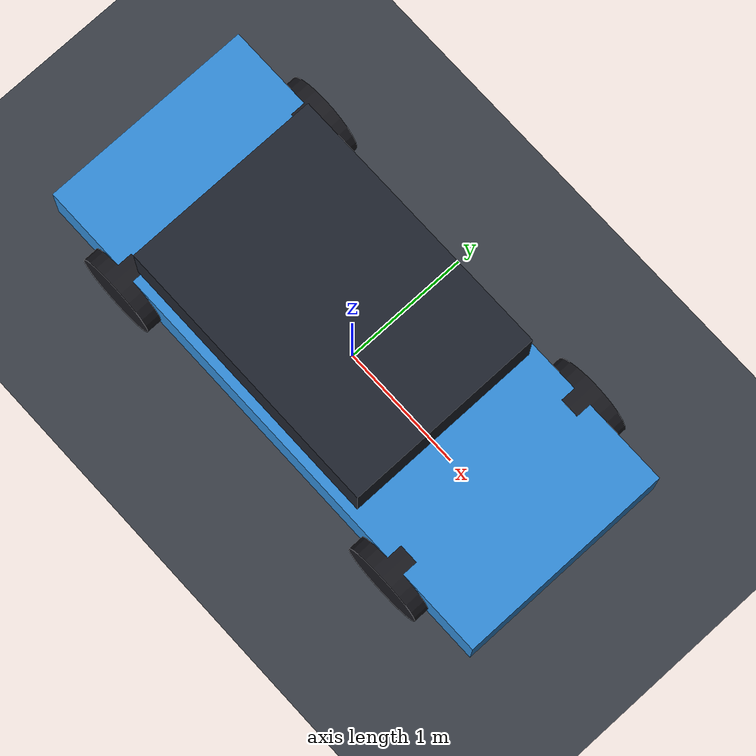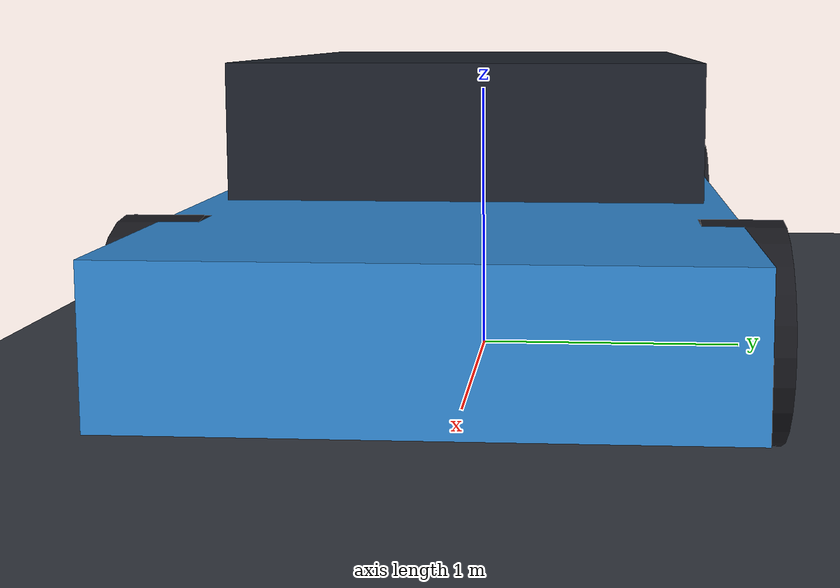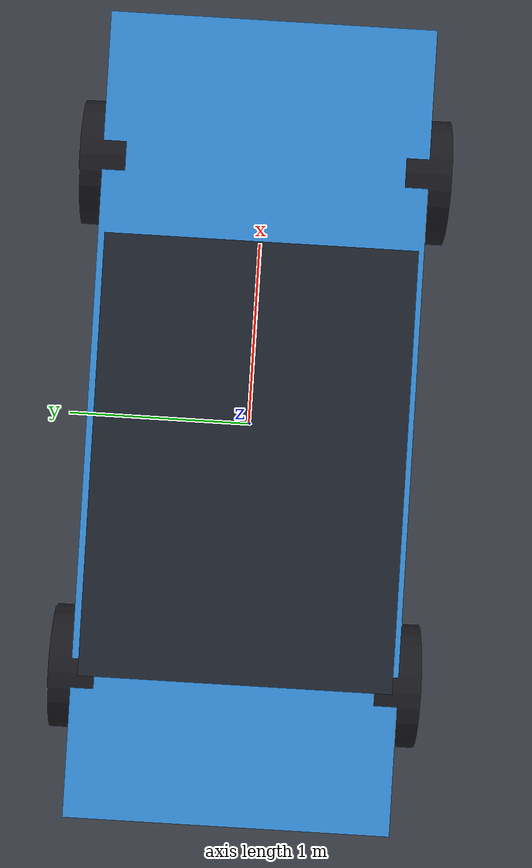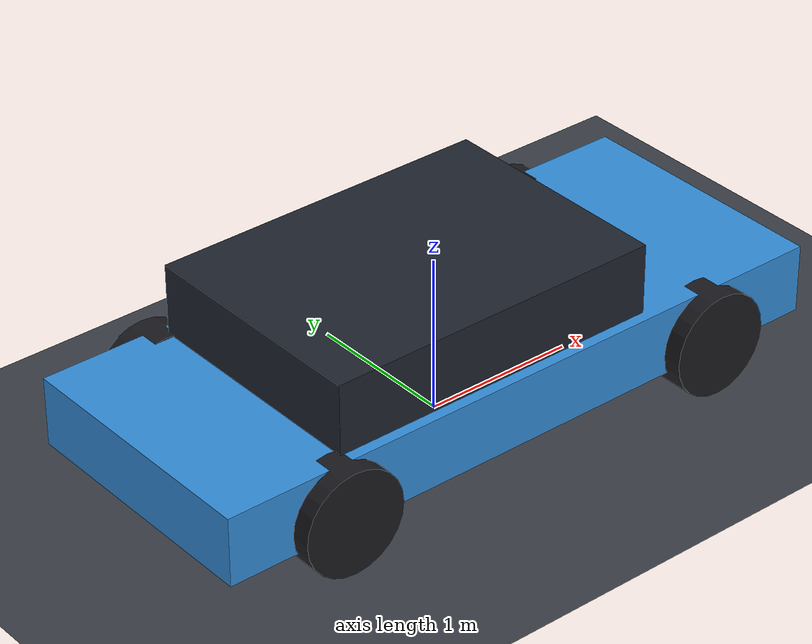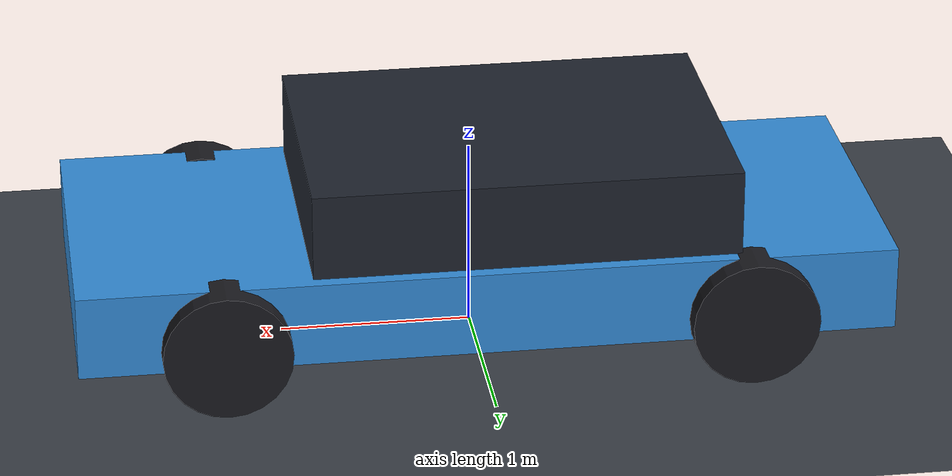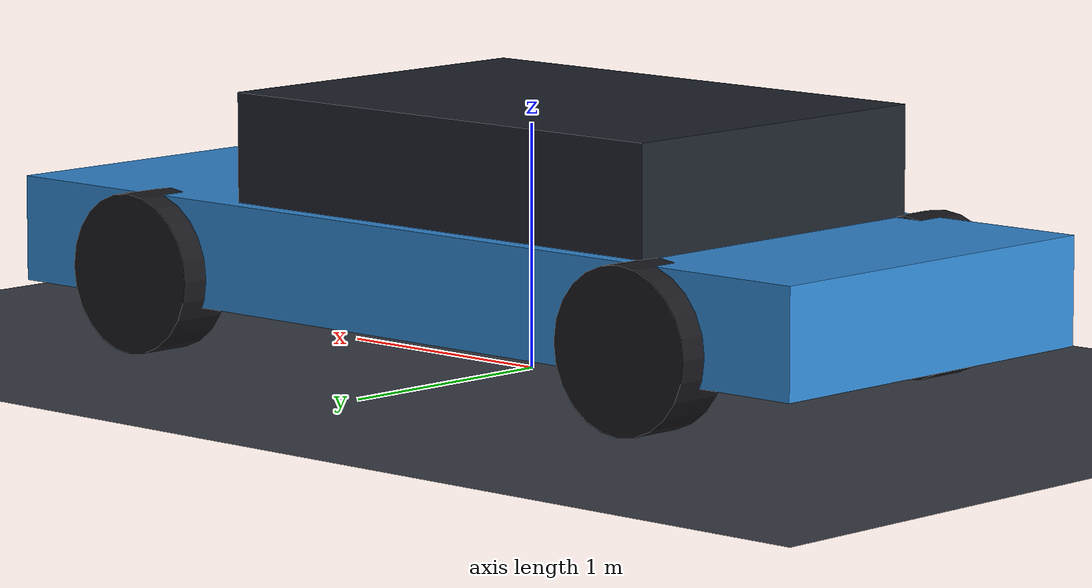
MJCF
<mujoco model="car-v1">
  <compiler angle="radian" autolimits="true"/>
  <option gravity="0 0 -9.81" timestep="0.004" integrator="implicitfast"/>

  <default>
    <joint damping="0.2"/>
    <geom condim="4" friction="1.3 0.02 0.001"/>
    <!-- wheels: a bit grippier, low rolling resistance -->
    <default class="wheel">
      <geom type="cylinder" size="0.33 0.12" euler="1.5708 0 0" rgba="0.1 0.1 0.12 1"
            friction="1.6 0.02 0.001" mass="15"/>
    </default>
  </default>

  <asset>
    <texture name="grid" type="2d" builtin="checker" rgb1="0.25 0.27 0.30" rgb2="0.20 0.22 0.25"
             width="128" height="128"/>
    <material name="asphalt" texture="grid" texrepeat="40 40" reflectance="0.02"/>
    <material name="car_body" rgba="0.20 0.55 0.85 1" specular="0.5" shininess="0.4"/>
    <material name="cabin" rgba="0.12 0.14 0.18 1" specular="0.6" shininess="0.6"/>
  </asset>

  <worldbody>
    <light name="sun" pos="10 -10 20" dir="-0.4 0.4 -1" diffuse="0.8 0.8 0.8" specular="0.2 0.2 0.2"/>
    <geom name="floor" type="plane" size="120 120 0.1" material="asphalt"/>

    <!-- a fixed drone camera; the chase camera lives on the chassis so it follows -->
    <camera name="overhead" pos="0 0 40" xyaxes="1 0 0 0 1 0"/>

    <body name="chassis" pos="0 0 0.45">
      <freejoint name="chassis_joint"/>
      <geom name="chassis_geom" type="box" size="2.1 0.85 0.22" mass="1100" material="car_body"/>
      <geom name="cabin_geom" type="box" size="1.1 0.78 0.25" pos="-0.2 0 0.42" mass="120" material="cabin"/>
      <!-- chase cam tracks the chassis center of mass -->
      <camera name="chase" pos="-9 0 3.5" xyaxes="0 -1 0 0.35 0 1" mode="trackcom"/>

      <!-- ===== front-left: steer hinge -> roll hinge -> wheel ===== -->
      <body name="steer_fl" pos="1.35 0.85 -0.1">
        <inertial pos="0 0 0" mass="2" diaginertia="0.05 0.05 0.05"/>
        <joint name="steer_l" type="hinge" axis="0 0 1" range="-0.7 0.7"/>
        <body name="wheel_fl">
          <joint name="roll_fl" type="hinge" axis="0 1 0"/>
          <geom class="wheel"/>
        </body>
      </body>
      <!-- ===== front-right ===== -->
      <body name="steer_fr" pos="1.35 -0.85 -0.1">
        <inertial pos="0 0 0" mass="2" diaginertia="0.05 0.05 0.05"/>
        <joint name="steer_r" type="hinge" axis="0 0 1" range="-0.7 0.7"/>
        <body name="wheel_fr">
          <joint name="roll_fr" type="hinge" axis="0 1 0"/>
          <geom class="wheel"/>
        </body>
      </body>
      <!-- ===== rear-left (driven) ===== -->
      <body name="wheel_rl" pos="-1.35 0.85 -0.1">
        <joint name="roll_rl" type="hinge" axis="0 1 0"/>
        <geom class="wheel"/>
      </body>
      <!-- ===== rear-right (driven) ===== -->
      <body name="wheel_rr" pos="-1.35 -0.85 -0.1">
        <joint name="roll_rr" type="hinge" axis="0 1 0"/>
        <geom class="wheel"/>
      </body>
    </body>
  </worldbody>

  <actuator>
    <!-- ORDER IS THE ACTION CONTRACT: [drive_rl, drive_rr, steer_l, steer_r] -->
    <velocity name="drive_rl" joint="roll_rl" kv="120" ctrlrange="-40 80"/>
    <velocity name="drive_rr" joint="roll_rr" kv="120" ctrlrange="-40 80"/>
    <position name="steer_l"  joint="steer_l" kp="2000" ctrlrange="-0.7 0.7"/>
    <position name="steer_r"  joint="steer_r" kp="2000" ctrlrange="-0.7 0.7"/>
  </actuator>

  <sensor>
    <framepos    name="chassis_pos" objtype="body" objname="chassis"/>
    <framequat   name="chassis_quat" objtype="body" objname="chassis"/>
    <framelinvel name="chassis_linvel" objtype="body" objname="chassis"/>
    <framezaxis  name="chassis_up" objtype="body" objname="chassis"/>
  </sensor>
</mujoco>
